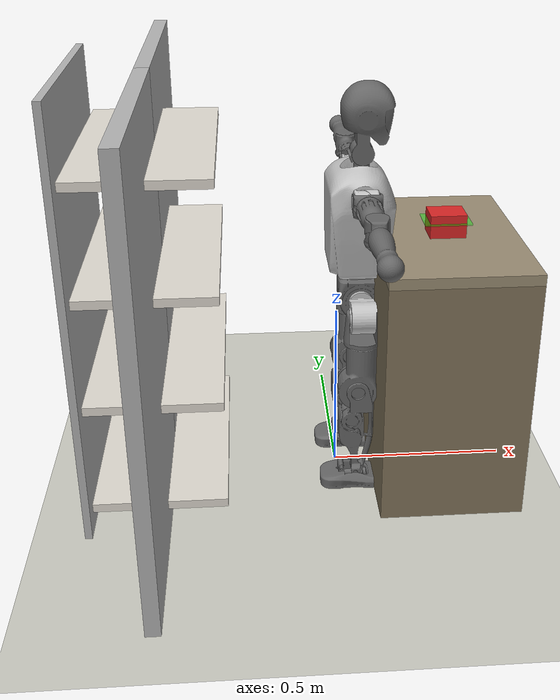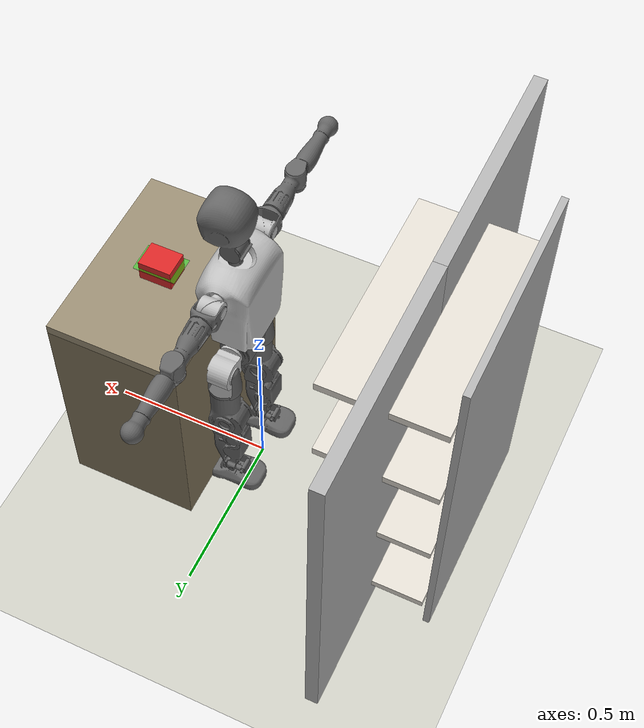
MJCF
<mujoco model="roboshelf_manip_sandbox_t1_v1">

  <!-- meshdir: src/envs/assets/ → mujoco_menagerie/booster_t1/assets/ -->
  <compiler angle="radian" autolimits="true"
            meshdir="../../../mujoco_menagerie/booster_t1/assets"/>

  <option timestep="0.001" gravity="0 0 -9.81" integrator="implicitfast"/>

  <visual>
    <headlight diffuse="0.8 0.8 0.8" ambient="0.3 0.3 0.3" specular="0.1 0.1 0.1"/>
    <global azimuth="120" elevation="-25" offwidth="1920" offheight="1080"/>
    <quality shadowsize="2048"/>
    <map znear="0.01" zfar="20"/>
  </visual>

  <default>
    <!-- T1 alap defaults (az eredeti t1.xml-ből örökölve) -->
    <default class="t1">
      <geom material="medium_gray"/>
      <site rgba="1 0 0 1" size="0.01" group="5"/>
      <joint frictionloss="0.1" armature="0.005"/>
      <position inheritrange="1" kp="75" kv="5"/>
      <default class="visual">
        <geom type="mesh" contype="0" conaffinity="0" group="2"/>
      </default>
      <default class="collision">
        <geom group="3"/>
      </default>
    </default>

    <!-- Passzív jointok (lábak, fej, derék): high damping, nincs actuator -->
    <default class="passive_joint">
      <joint damping="200.0" armature="0.5"/>
    </default>

    <!-- Aktív jobb kar váll/könyök -->
    <default class="arm_joint">
      <joint damping="2.0" armature="0.01"/>
    </default>

    <!-- Aktív jobb kar position actuator
         kp=150: G1-ről örökölve (kp_sweep validáció szükséges T1-re!) -->
    <default class="arm_motor">
      <position kp="150" forcerange="-15 15" ctrlrange="-3.14 3.14"/>
    </default>

    <!-- Termék doboz -->
    <default class="product_box">
      <geom friction="0.8 0.01 0.001" condim="4" solref="0.02 1" solimp="0.9 0.95 0.001"/>
    </default>
  </default>

  <asset>
    <texture name="tex_floor" type="2d" builtin="checker" width="512" height="512"
             rgb1="0.82 0.82 0.78" rgb2="0.78 0.78 0.74"/>
    <material name="tex_floor"  texture="tex_floor" texrepeat="6 6" reflectance="0.1"/>
    <material name="mat_shelf"  rgba="0.7 0.7 0.7 1" reflectance="0.3" shininess="0.5"/>
    <material name="mat_board"  rgba="0.88 0.86 0.82 1" reflectance="0.05"/>
    <material name="mat_red"    rgba="0.85 0.15 0.15 1"/>
    <material name="mat_green"  rgba="0.15 0.70 0.25 1"/>
    <!-- T1 robot anyagok -->
    <material name="light_gray"  rgba="0.76 0.76 0.76 1"/>
    <material name="medium_gray" rgba="0.4 0.4 0.4 1"/>
    <!-- T1 mesh-ek (forrás: mujoco_menagerie/booster_t1/assets/) -->
    <mesh file="Trunk.stl"/>
    <mesh file="H1.stl"/>
    <mesh file="H2.stl"/>
    <mesh file="AL1.stl"/>
    <mesh file="AL2.stl"/>
    <mesh file="AL3.stl"/>
    <mesh file="left_hand_link.stl"/>
    <mesh file="AR1.stl"/>
    <mesh file="AR2.stl"/>
    <mesh file="AR3.stl"/>
    <mesh file="right_hand_link.stl"/>
    <mesh file="Waist.stl"/>
    <mesh file="Hip_Pitch_Left.stl"/>
    <mesh file="Hip_Roll_Left.stl"/>
    <mesh file="Hip_Yaw_Left.stl"/>
    <mesh file="Shank_Left.stl"/>
    <mesh file="Ankle_Cross_Left.stl"/>
    <mesh file="left_foot_link.stl"/>
    <mesh file="Hip_Pitch_Right.stl"/>
    <mesh file="Hip_Roll_Right.stl"/>
    <mesh file="Hip_Yaw_Right.stl"/>
    <mesh file="Shank_Right.stl"/>
    <mesh file="Ankle_Cross_Right.stl"/>
    <mesh file="right_foot_link.stl"/>
  </asset>

  <worldbody>

    <light name="ceil_1" pos="0 0 3.5" dir="0 0 -1" diffuse="0.9 0.9 0.9" castshadow="true" cutoff="60"/>
    <light name="ceil_2" pos="1 0 3.0" dir="0 0 -1" diffuse="0.7 0.7 0.7" castshadow="false" cutoff="60"/>
    <geom name="floor" type="plane" size="4 4 0.01" material="tex_floor"/>

    <body name="Trunk" pos="0 0 0.665" childclass="t1">
      <!-- Nincs freejoint → Trunk rögzített a worldhez -->
      <inertial pos="0.0551365 -1.42058e-06 0.105062"
                quat="0.99996 1.40561e-05 -0.00899532 -1.39249e-05"
                mass="11.7" diaginertia="0.0915404 0.0767787 0.0556055"/>
      <site name="imu"/>
      <geom class="visual" material="light_gray" mesh="Trunk"/>
      <geom class="collision" size="0.075 0.1 0.15" pos="0.06 0 0.12" type="box"/>

      <!-- Fej (passzív) -->
      <body name="H1" pos="0.0625 0 0.243">
        <inertial pos="-0.000508 -0.001403 0.057432"
                  quat="0.763881 -0.0132172 0.00173419 0.645219"
                  mass="0.44391" diaginertia="0.000241549 0.00022351 0.000149941"/>
        <joint name="AAHead_yaw" class="passive_joint" axis="0 0 1" range="-1.57 1.57"/>
        <geom class="visual" mesh="H1"/>
        <body name="H2" pos="0 0 0.06185">
          <inertial pos="0.007802 0.001262 0.098631"
                    quat="0.988453 0.106172 -0.0745686 -0.0782786"
                    mass="0.631019" diaginertia="0.00203553 0.00192467 0.00172381"/>
          <joint name="Head_pitch" class="passive_joint" axis="0 1 0" range="-0.35 1.22"/>
          <geom class="visual" mesh="H2"/>
          <geom class="collision" size="0.08" pos="0.01 0 0.11"/>
        </body>
      </body>

      <!-- Bal kar (passzív) -->
      <body name="AL1" pos="0.0575 0.1063 0.219" quat="1 0 0.000440565 0">
        <inertial pos="-0.000677 0.044974 0"
                  quat="0.50423 0.495734 -0.50423 0.495734"
                  mass="0.53" diaginertia="0.001367 0.00129329 0.000292711"/>
        <joint name="Left_Shoulder_Pitch" class="passive_joint" axis="0 1 0" range="-3.31 1.22"/>
        <geom class="visual" material="light_gray" mesh="AL1"/>
        <body name="AL2" pos="0 0.047 0">
          <inertial pos="0.003862 0.037976 0"
                    quat="0.487991 0.511727 -0.487991 0.511727"
                    mass="0.16" diaginertia="0.000401 0.00034538 0.00017662"/>
          <joint name="Left_Shoulder_Roll" class="passive_joint" axis="1 0 0" range="-1.74 1.57"/>
          <geom class="visual" mesh="AL2"/>
          <body name="AL3" pos="0.00025 0.0605 0">
            <inertial pos="0 0.085353 -9.9e-05"
                      quat="0.70641 0.707803 0 0"
                      mass="1.02" diaginertia="0.012869 0.012798 0.000620953"/>
            <joint name="Left_Elbow_Pitch" class="passive_joint" axis="0 1 0" range="-2.27 2.27"/>
            <geom class="visual" mesh="AL3"/>
            <geom class="collision" size="0.03 0.075" pos="0 0.05 0" quat="0.707105 0.707108 0 0" type="cylinder"/>
            <body name="left_hand_link" pos="0 0.1471 0">
              <inertial pos="-0.000108 0.109573 0.000591"
                        quat="0.707866 0.706347 -5.22939e-05 -0.000214913"
                        mass="0.327214" diaginertia="0.008159 0.00813104 0.000214962"/>
              <joint name="Left_Elbow_Yaw" class="passive_joint" axis="0 0 1" range="-2.44 0"/>
              <geom class="visual" mesh="left_hand_link"/>
              <geom class="collision" size="0.03 0.0875" pos="0 0.13 0" quat="0.707105 0.707108 0 0" type="cylinder"/>
            </body>
          </body>
        </body>
      </body>

      <body name="AR1" pos="0.0575 -0.1063 0.219" quat="1 0 0.000440565 0">
        <inertial pos="-0.000677 -0.044974 0"
                  quat="0.50423 0.495734 -0.50423 0.495734"
                  mass="0.53" diaginertia="0.001367 0.00129329 0.000292711"/>
        <joint name="Right_Shoulder_Pitch" class="arm_joint" axis="0 1 0" range="-3.31 1.22"/>
        <geom class="visual" material="light_gray" mesh="AR1"/>
        <body name="AR2" pos="0 -0.047 0">
          <inertial pos="0.003862 -0.037976 0"
                    quat="0.511727 0.487991 -0.511727 0.487991"
                    mass="0.16" diaginertia="0.000401 0.00034538 0.00017662"/>
          <joint name="Right_Shoulder_Roll" class="arm_joint" axis="1 0 0" range="-1.57 1.74"/>
          <geom class="visual" mesh="AR2"/>
          <body name="AR3" pos="0.00025 -0.0605 0">
            <inertial pos="0 -0.085353 -9.9e-05"
                      quat="0.707803 0.70641 0 0"
                      mass="1.02" diaginertia="0.012869 0.012798 0.000620953"/>
            <joint name="Right_Elbow_Pitch" class="arm_joint" axis="0 1 0" range="-2.27 2.27"/>
            <geom class="visual" mesh="AR3"/>
            <geom class="collision" size="0.03 0.075" pos="0 -0.05 0" quat="0.707105 0.707108 0 0" type="cylinder"/>
            <body name="right_hand_link" pos="0 -0.1471 0">
              <inertial pos="-0.000108 -0.109573 0.000591"
                        quat="0.706347 0.707866 0.000214913 5.22939e-05"
                        mass="0.327214" diaginertia="0.008159 0.00813104 0.000214962"/>
              <joint name="Right_Elbow_Yaw" class="arm_joint" axis="0 0 1" range="0 2.44"/>
              <geom class="visual" mesh="right_hand_link"/>
              <geom class="collision" size="0.03 0.0875" pos="0 -0.13 0" quat="0.707105 0.707108 0 0" type="cylinder"/>
              <!-- Kéz érintkezési pont — az arm reach méréshez és az env szenzorokhoz -->
              <site name="right_hand_site" size="0.02" pos="0 -0.15 0" rgba="0 1 0 0.6"/>
            </body>
          </body>
        </body>
      </body>

      <!-- Derék + lábak (passzív) -->
      <body name="Waist" pos="0.0625 0 -0.1155">
        <inertial pos="0.002284 3e-06 0.007301"
                  quat="0.983649 0.000360386 -0.180076 0.00269791"
                  mass="2.581" diaginertia="0.00536742 0.005299 0.00474258"/>
        <joint name="Waist" class="passive_joint" axis="0 0 1" range="-1.57 1.57"/>
        <geom class="visual" mesh="Waist"/>
        <body name="Hip_Pitch_Left" pos="0 0.106 0">
          <inertial pos="0.000534 -0.007296 -0.018083"
                    quat="0.975141 0.2211 0.0145808 0.0017406"
                    mass="1.021" diaginertia="0.00180547 0.00145926 0.00125327"/>
          <joint name="Left_Hip_Pitch" class="passive_joint" axis="0 1 0" range="-1.8 1.57"/>
          <geom class="visual" material="light_gray" mesh="Hip_Pitch_Left"/>
          <body name="Hip_Roll_Left" pos="0 0 -0.02">
            <inertial pos="0.001101 2.4e-05 -0.05375"
                      quat="0.707081 -0.00599604 -0.00599604 0.707081"
                      mass="0.385" diaginertia="0.001743 0.00151729 0.000514712"/>
            <joint name="Left_Hip_Roll" class="passive_joint" axis="1 0 0" range="-0.2 1.57"/>
            <geom class="visual" mesh="Hip_Roll_Left"/>
            <body name="Hip_Yaw_Left" pos="0 0 -0.081854">
              <inertial pos="-0.007233 0.000206 -0.089184"
                        quat="0.696808 -0.033953 -0.0315708 0.715758"
                        mass="2.166" diaginertia="0.0257334 0.0253024 0.00259215"/>
              <joint name="Left_Hip_Yaw" class="passive_joint" axis="0 0 1" range="-1 1"/>
              <geom class="visual" mesh="Hip_Yaw_Left"/>
              <geom class="collision" size="0.05 0.08" type="cylinder"/>
              <body name="Shank_Left" pos="-0.014 0 -0.134">
                <inertial pos="-0.006012 0.000259 -0.124318"
                          quat="0.997573 0.00144024 -0.023949 0.0653706"
                          mass="1.73" diaginertia="0.0346951 0.0345375 0.00185844"/>
                <joint name="Left_Knee_Pitch" class="passive_joint" axis="0 1 0" range="0 2.34"/>
                <geom class="visual" mesh="Shank_Left"/>
                <geom class="collision" size="0.05 0.075" pos="0 0 -0.12" type="cylinder"/>
                <body name="Ankle_Cross_Left" pos="0 0 -0.28">
                  <inertial pos="-0.003722 0 -0.007981"
                            quat="0.443136 0.551027 0.551027 0.443136"
                            mass="0.073" diaginertia="2.9e-05 2.56589e-05 1.13411e-05"/>
                  <joint name="Left_Ankle_Pitch" class="passive_joint" axis="0 1 0" range="-0.87 0.35"/>
                  <geom class="visual" mesh="Ankle_Cross_Left"/>
                  <body name="left_foot_link" pos="0 0.00025 -0.012">
                    <inertial pos="-0.000249 0 -0.00914"
                              quat="0 0.620755 0 0.784005"
                              mass="0.685" diaginertia="0.00269786 0.002385 0.00218714"/>
                    <joint name="Left_Ankle_Roll" class="passive_joint" axis="1 0 0" range="-0.44 0.44"/>
                    <geom class="visual" mesh="left_foot_link"/>
                    <geom class="collision" size="0.1115 0.05 0.015" pos="0.01 0 -0.015" type="box"/>
                  </body>
                </body>
              </body>
            </body>
          </body>
        </body>
        <body name="Hip_Pitch_Right" pos="0 -0.106 0">
          <inertial pos="0.000534 0.007514 -0.018082"
                    quat="0.973446 -0.228403 0.0147148 -0.00419349"
                    mass="1.021" diaginertia="0.00180552 0.0014632 0.00124928"/>
          <joint name="Right_Hip_Pitch" class="passive_joint" axis="0 1 0" range="-1.8 1.57"/>
          <geom class="visual" material="light_gray" mesh="Hip_Pitch_Right"/>
          <body name="Hip_Roll_Right" pos="0 0 -0.02">
            <inertial pos="0.001099 2.4e-05 -0.053748"
                      quat="0.707081 -0.00599604 -0.00599604 0.707081"
                      mass="0.385" diaginertia="0.001743 0.00151729 0.000514712"/>
            <joint name="Right_Hip_Roll" class="passive_joint" axis="1 0 0" range="-1.57 0.2"/>
            <geom class="visual" mesh="Hip_Roll_Right"/>
            <body name="Hip_Yaw_Right" pos="0 0 -0.081854">
              <inertial pos="-0.007191 -0.000149 -0.08922"
                        quat="0.714468 -0.0315638 -0.0336391 0.698146"
                        mass="2.17" diaginertia="0.0257623 0.0253298 0.00259389"/>
              <joint name="Right_Hip_Yaw" class="passive_joint" axis="0 0 1" range="-1 1"/>
              <geom class="visual" mesh="Hip_Yaw_Right"/>
              <geom class="collision" size="0.05 0.08" type="cylinder"/>
              <body name="Shank_Right" pos="-0.014 0 -0.134">
                <inertial pos="-0.005741 -0.000541 -0.122602"
                          quat="0.99926 -0.000580963 -0.023461 -0.0304754"
                          mass="1.79" diaginertia="0.0351717 0.0349574 0.00196589"/>
                <joint name="Right_Knee_Pitch" class="passive_joint" axis="0 1 0" range="0 2.34"/>
                <geom class="visual" mesh="Shank_Right"/>
                <geom class="collision" size="0.05 0.075" pos="0 0 -0.12" type="cylinder"/>
                <body name="Ankle_Cross_Right" pos="0 0 -0.28">
                  <inertial pos="-0.003722 0 -0.007981"
                            quat="0.443136 0.551027 0.551027 0.443136"
                            mass="0.073" diaginertia="2.9e-05 2.56589e-05 1.13411e-05"/>
                  <joint name="Right_Ankle_Pitch" class="passive_joint" axis="0 1 0" range="-0.87 0.35"/>
                  <geom class="visual" mesh="Ankle_Cross_Right"/>
                  <body name="right_foot_link" pos="0 -0.00025 -0.012">
                    <inertial pos="-0.000248 0 -0.00914"
                              quat="0 0.620755 0 0.784005"
                              mass="0.685" diaginertia="0.00269786 0.002385 0.00218714"/>
                    <joint name="Right_Ankle_Roll" class="passive_joint" axis="1 0 0" range="-0.44 0.44"/>
                    <geom class="visual" mesh="right_foot_link"/>
                    <geom class="collision" size="0.1115 0.05 0.015" pos="0.01 0 -0.015" type="box"/>
                  </body>
                </body>
              </body>
            </body>
          </body>
        </body>
      </body>
    </body>

    <body name="storage" pos="0.30 0 0">
      <geom name="st_legs" type="box" size="0.20 0.30 0.35" pos="0 0 0.35" rgba="0.50 0.45 0.35 1"/>
      <geom name="st_top"  type="box" size="0.20 0.30 0.015" pos="0 0 0.715" rgba="0.60 0.55 0.45 1"/>
    </body>

    <!-- ===== GONDOLA A (robot mögött, x=-0.5) ===== -->
    <body name="gondola_A" pos="-0.5 0 0">
      <geom name="gA_sL" type="box" size="0.02 0.35 0.60" pos="0 -0.35 0.60" material="mat_shelf"/>
      <geom name="gA_sR" type="box" size="0.02 0.35 0.60" pos="0  0.35 0.60" material="mat_shelf"/>
      <geom name="gA_bk" type="box" size="0.01 0.33 0.60" pos="-0.20 0 0.60" material="mat_shelf"/>
      <geom name="gA_b1" type="box" size="0.18 0.33 0.012" pos="0 0 0.10" material="mat_board"/>
      <geom name="gA_b2" type="box" size="0.18 0.33 0.012" pos="0 0 0.40" material="mat_board"/>
      <geom name="gA_b3" type="box" size="0.18 0.33 0.012" pos="0 0 0.70" material="mat_board"/>
      <geom name="gA_b4" type="box" size="0.18 0.33 0.012" pos="0 0 1.00" material="mat_board"/>
    </body>

    <!-- ===== STOCK TERMÉK (asztalon, x=0.30) =====
         Asztalfelszín z=0.715, doboz félmagasság=0.04 → settled z=0.755
         (G1-gyel azonos méret → összehasonlítható push task) -->
    <body name="stock_1" pos="0.30 0.0 0.755">
      <freejoint/>
      <geom type="box" size="0.05 0.04 0.04" class="product_box" material="mat_red" mass="0.35"/>
      <site name="stock_1_site" size="0.01" rgba="1 0 0 0.8"/>
    </body>

    <site name="target_shelf" type="box" size="0.065 0.045 0.002"
          pos="0.30 0.0 0.77" rgba="0 1 0 0.4"/>

    <!-- ===== KAMERÁK (VLA dataset gyűjtéshez) ===== -->
    <camera name="front_cam"
            pos="0.25 -1.4 0.9"
            xyaxes="1 0 0  0 0 1"/>
    <camera name="top_cam"
            pos="0.25 0.0 2.2"
            xyaxes="1 0 0  0 1 0"/>

  </worldbody>

  <actuator>
    <position name="right_shoulder_pitch" joint="Right_Shoulder_Pitch" class="arm_motor"/>
    <position name="right_shoulder_roll"  joint="Right_Shoulder_Roll"  class="arm_motor"/>
    <position name="right_elbow_pitch"    joint="Right_Elbow_Pitch"    class="arm_motor"/>
    <position name="right_elbow_yaw"      joint="Right_Elbow_Yaw"      class="arm_motor"/>
  </actuator>

  <!-- ===== SZENZOR ===== -->
  <sensor>
    <framepos name="s_stock_1"    objtype="body" objname="stock_1"/>
    <framepos name="s_right_hand" objtype="site" objname="right_hand_site"/>
    <framepos name="s_target"     objtype="site" objname="target_shelf"/>
    <touch    name="touch_palm"   site="right_hand_site"/>
  </sensor>

</mujoco>
